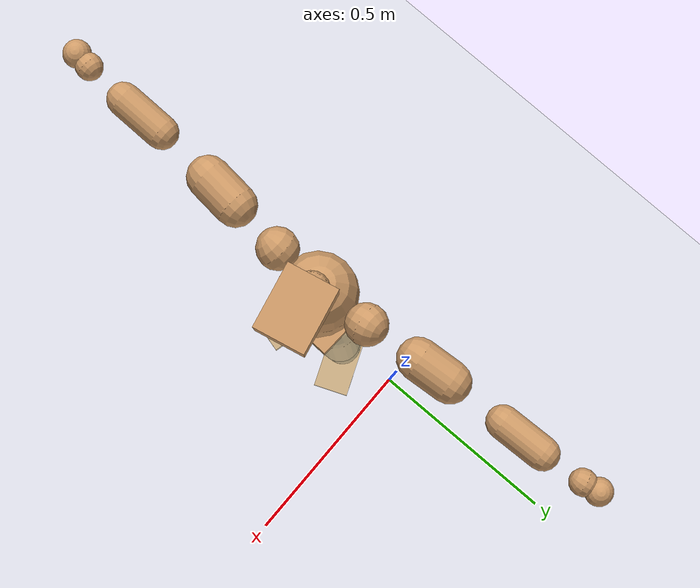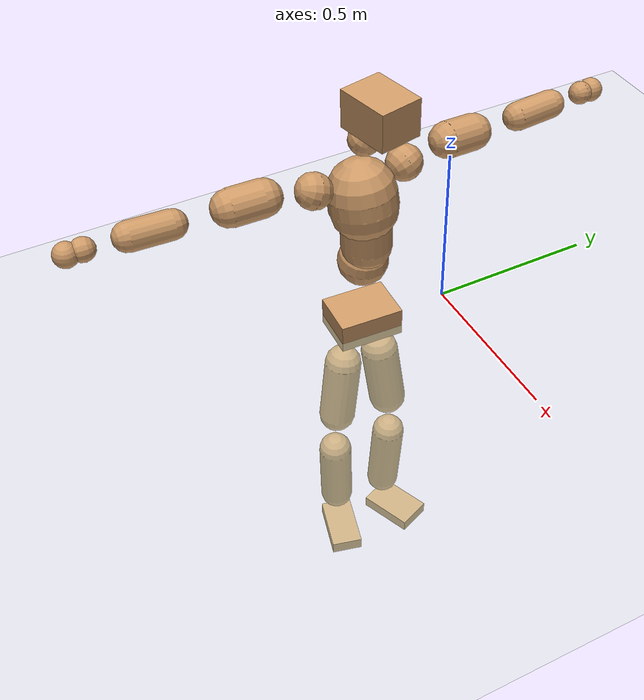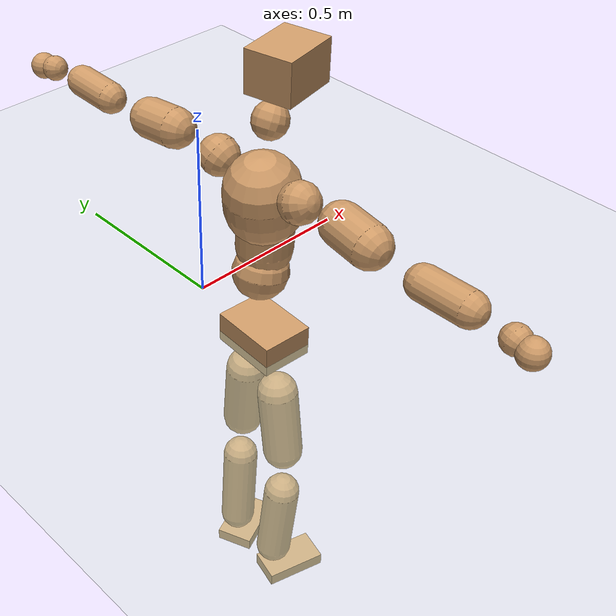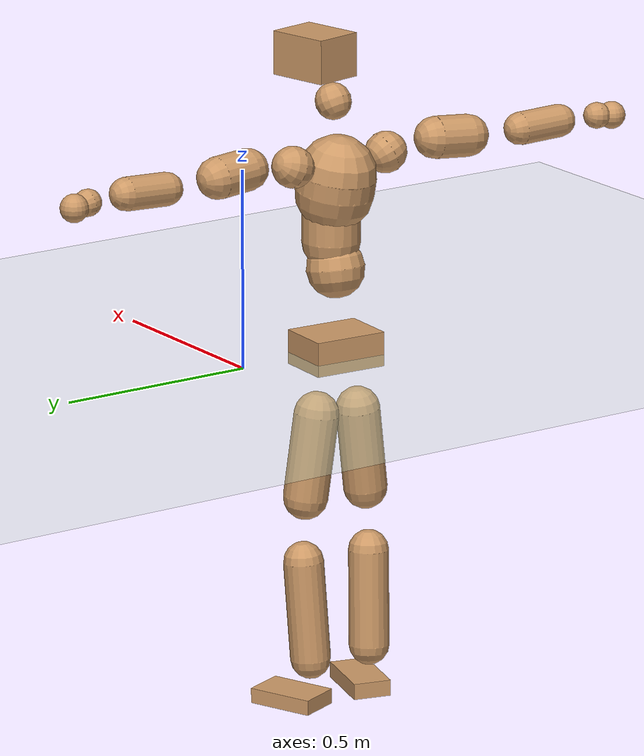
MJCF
<mujoco model="humanoid">
  <compiler coordinate="local" angle="radian"/>
  <default>
    <joint damping="0.0" armature="0.01" stiffness="0.0" limited="true"/>
    <geom conaffinity="1" condim="3" contype="7" margin="0.001" rgba="0.8 0.6 .4 1"/>
  </default>
  <asset>
    <texture type="skybox" builtin="gradient" rgb1=".4 .5 .6" rgb2="0 0 0" width="100" height="100"/>
    <texture builtin="flat" height="1278" mark="cross" markrgb="1 1 1" name="texgeom" random="0.01" rgb1="0.8 0.6 0.4" rgb2="0.8 0.6 0.4" type="cube" width="127"/>
    <texture builtin="checker" height="100" name="texplane" rgb1="0 0 0" rgb2="0.8 0.8 0.8" type="2d" width="100"/>
    <material name="MatPlane" reflectance="0.5" shininess="1" specular="1" texrepeat="60 60" texture="texplane"/>
    <material name="geom" texture="texgeom" texuniform="true"/>
  </asset>
  <worldbody>
    <light cutoff="100" diffuse="1 1 1" dir="-0 0 -1.3" directional="true" exponent="1" pos="0 0 1.3" specular=".1 .1 .1"/>
    <geom conaffinity="1" condim="3" name="floor" pos="0 0 0" rgba="0.8 0.9 0.8 1" size="100 100 .2" type="plane" material="MatPlane"/>
    <body name="Pelvis" pos="-0.0046 -0.2644 0.0198">
      <freejoint name="Pelvis"/>
      <geom type="box" contype="1" conaffinity="1" density="5359.37475" pos="-0.0117 0.0006 -0.0079" size="0.0717 0.0953 0.0436" quat="0.9996 0.0000 0.0000 -0.0268" name="Pelvis"/>
      <body name="L_Hip" pos="-0.0193 0.0513 -0.0812">
        <joint name="L_Hip_x" type="hinge" pos="0 0 0" axis="1 0 0" stiffness="1600" damping="160" armature="0.02" range="-180.0000 180.0000"/>
        <joint name="L_Hip_y" type="hinge" pos="0 0 0" axis="0 1 0" stiffness="1600" damping="160" armature="0.02" range="-180.0000 180.0000"/>
        <joint name="L_Hip_z" type="hinge" pos="0 0 0" axis="0 0 1" stiffness="1600" damping="160" armature="0.02" range="-180.0000 180.0000"/>
        <geom type="capsule" contype="1" conaffinity="1" density="2040.816327" size="0.0563" fromto="0.0040 0.0105 -0.0856 0.0139 0.0367 -0.2995" name="L_Hip"/>
        <body name="L_Knee" pos="0.0179 0.0471 -0.3851">
          <joint name="L_Knee_x" type="hinge" pos="0 0 0" axis="1 0 0" stiffness="1600" damping="160" armature="0.02" range="-180.0000 180.0000"/>
          <joint name="L_Knee_y" type="hinge" pos="0 0 0" axis="0 1 0" stiffness="1600" damping="160" armature="0.02" range="-180.0000 180.0000"/>
          <joint name="L_Knee_z" type="hinge" pos="0 0 0" axis="0 0 1" stiffness="1600" damping="160" armature="0.02" range="-180.0000 180.0000"/>
          <geom type="capsule" contype="1" conaffinity="1" density="1234.567901" size="0.0507" fromto="-0.0063 -0.0023 -0.0804 -0.0260 -0.0096 -0.3315" name="L_Knee"/>
          <body name="L_Ankle" pos="-0.0324 -0.0119 -0.4118">
            <joint name="L_Ankle_x" type="hinge" pos="0 0 0" axis="1 0 0" stiffness="1600" damping="160" armature="0.02" range="-180.0000 180.0000"/>
            <joint name="L_Ankle_y" type="hinge" pos="0 0 0" axis="0 1 0" stiffness="1600" damping="160" armature="0.02" range="-180.0000 180.0000"/>
            <joint name="L_Ankle_z" type="hinge" pos="0 0 0" axis="0 0 1" stiffness="1600" damping="160" armature="0.02" range="-180.0000 180.0000"/>
            <geom type="box" contype="1" conaffinity="1" density="1000.000022" pos="0.0595 0.0241 -0.0303" size="0.0853 0.0542 0.0193" quat="0.9816 0.0000 0.0000 0.1911" name="L_Ankle"/>
            <body name="L_Toe" pos="0.1189 0.0481 -0.0606">
              <joint name="L_Toe_x" type="hinge" pos="0 0 0" axis="1 0 0" stiffness="1000" damping="100" armature="0.02" range="-180.0000 180.0000"/>
              <joint name="L_Toe_y" type="hinge" pos="0 0 0" axis="0 1 0" stiffness="1000" damping="100" armature="0.02" range="-180.0000 180.0000"/>
              <joint name="L_Toe_z" type="hinge" pos="0 0 0" axis="0 0 1" stiffness="1000" damping="100" armature="0.02" range="-180.0000 180.0000"/>
              <geom type="box" contype="1" conaffinity="1" density="7590394.776102" pos="0.0000 0.0000 0.0325" size="0.001 0.0026 0.0011" quat="0.9808 0.0000 0.0000 0.1952" name="L_Toe"/>
            </body>
          </body>
        </body>
      </body>
      <body name="R_Hip" pos="-0.0174 -0.0514 -0.0885">
        <joint name="R_Hip_x" type="hinge" pos="0 0 0" axis="1 0 0" stiffness="1600" damping="160" armature="0.02" range="-180.0000 180.0000"/>
        <joint name="R_Hip_y" type="hinge" pos="0 0 0" axis="0 1 0" stiffness="1600" damping="160" armature="0.02" range="-180.0000 180.0000"/>
        <joint name="R_Hip_z" type="hinge" pos="0 0 0" axis="0 0 1" stiffness="1600" damping="160" armature="0.02" range="-180.0000 180.0000"/>
        <geom type="capsule" contype="1" conaffinity="1" density="2040.816327" size="0.0555" fromto="0.0011 -0.0101 -0.0849 0.0039 -0.0351 -0.2944" name="R_Hip"/>
        <body name="R_Knee" pos="0.0051 -0.0452 -0.3793">
          <joint name="R_Knee_x" type="hinge" pos="0 0 0" axis="1 0 0" stiffness="1600" damping="160" armature="0.02" range="-180.0000 180.0000"/>
          <joint name="R_Knee_y" type="hinge" pos="0 0 0" axis="0 1 0" stiffness="1600" damping="160" armature="0.02" range="-180.0000 180.0000"/>
          <joint name="R_Knee_z" type="hinge" pos="0 0 0" axis="0 0 1" stiffness="1600" damping="160" armature="0.02" range="-180.0000 180.0000"/>
          <geom type="capsule" contype="1" conaffinity="1" density="1234.567901" size="0.0512" fromto="-0.0060 0.0035 -0.0809 -0.0239 0.0139 -0.3245" name="R_Knee"/>
          <body name="R_Ankle" pos="-0.0299 0.0174 -0.4054">
            <joint name="R_Ankle_x" type="hinge" pos="0 0 0" axis="1 0 0" stiffness="1600" damping="160" armature="0.02" range="-180.0000 180.0000"/>
            <joint name="R_Ankle_y" type="hinge" pos="0 0 0" axis="0 1 0" stiffness="1600" damping="160" armature="0.02" range="-180.0000 180.0000"/>
            <joint name="R_Ankle_z" type="hinge" pos="0 0 0" axis="0 0 1" stiffness="1600" damping="160" armature="0.02" range="-180.0000 180.0000"/>
            <geom type="box" contype="1" conaffinity="1" density="999.999945" pos="0.0637 -0.0168 -0.0310" size="0.0891 0.0485 0.0206" quat="0.9917 0.0000 0.0000 -0.1286" name="R_Ankle"/>
            <body name="R_Toe" pos="0.1275 -0.0336 -0.062">
              <joint name="R_Toe_x" type="hinge" pos="0 0 0" axis="1 0 0" stiffness="1000" damping="100" armature="0.02" range="-180.0000 180.0000"/>
              <joint name="R_Toe_y" type="hinge" pos="0 0 0" axis="0 1 0" stiffness="1000" damping="100" armature="0.02" range="-180.0000 180.0000"/>
              <joint name="R_Toe_z" type="hinge" pos="0 0 0" axis="0 0 1" stiffness="1000" damping="100" armature="0.02" range="-180.0000 180.0000"/>
              <geom type="box" contype="1" conaffinity="1" density="8469854.365472" pos="0.0000 0.0000 0.0323" size="0.001 0.0024 0.0011" quat="0.9928 0.0000 0.0000 -0.1195" name="R_Toe"/>
            </body>
          </body>
        </body>
      </body>
      <body name="Torso" pos="-0.0336 0.0039 0.122">
        <joint name="Torso_x" type="hinge" pos="0 0 0" axis="1 0 0" stiffness="2000" damping="200" armature="0.02" range="-180.0000 180.0000"/>
        <joint name="Torso_y" type="hinge" pos="0 0 0" axis="0 1 0" stiffness="2000" damping="200" armature="0.02" range="-180.0000 180.0000"/>
        <joint name="Torso_z" type="hinge" pos="0 0 0" axis="0 0 1" stiffness="2000" damping="200" armature="0.02" range="-180.0000 180.0000"/>
        <geom type="capsule" contype="1" conaffinity="1" density="2040.816327" size="0.0738" fromto="0.0145 0.0032 0.0760 0.0149 0.0032 0.0780" name="Torso"/>
        <body name="Spine" pos="0.0294 0.0064 0.154">
          <joint name="Spine_x" type="hinge" pos="0 0 0" axis="1 0 0" stiffness="2000" damping="200" armature="0.02" range="-180.0000 180.0000"/>
          <joint name="Spine_y" type="hinge" pos="0 0 0" axis="0 1 0" stiffness="2000" damping="200" armature="0.02" range="-180.0000 180.0000"/>
          <joint name="Spine_z" type="hinge" pos="0 0 0" axis="0 0 1" stiffness="2000" damping="200" armature="0.02" range="-180.0000 180.0000"/>
          <geom type="capsule" contype="1" conaffinity="1" density="2040.816327" size="0.0733" fromto="0.0001 -0.0012 0.0733 -0.0000 0.0002 -0.0106" name="Spine"/>
          <body name="Chest" pos="0.0001 -0.001 0.0627">
            <joint name="Chest_x" type="hinge" pos="0 0 0" axis="1 0 0" stiffness="2000" damping="200" armature="0.02" range="-180.0000 180.0000"/>
            <joint name="Chest_y" type="hinge" pos="0 0 0" axis="0 1 0" stiffness="2000" damping="200" armature="0.02" range="-180.0000 180.0000"/>
            <joint name="Chest_z" type="hinge" pos="0 0 0" axis="0 0 1" stiffness="2000" damping="200" armature="0.02" range="-180.0000 180.0000"/>
            <geom type="capsule" contype="1" conaffinity="1" density="2040.816327" size="0.0987" fromto="-0.0158 -0.0058 0.0973 -0.0086 -0.0031 0.0530" name="Chest"/>
            <body name="Neck" pos="-0.0267 -0.0134 0.2235">
              <joint name="Neck_x" type="hinge" pos="0 0 0" axis="1 0 0" stiffness="1000" damping="100" armature="0.02" range="-180.0000 180.0000"/>
              <joint name="Neck_y" type="hinge" pos="0 0 0" axis="0 1 0" stiffness="1000" damping="100" armature="0.02" range="-180.0000 180.0000"/>
              <joint name="Neck_z" type="hinge" pos="0 0 0" axis="0 0 1" stiffness="1000" damping="100" armature="0.02" range="-180.0000 180.0000"/>
              <geom type="capsule" contype="1" conaffinity="1" density="1000" size="0.0452" fromto="0.0293 0.0054 0.0530 0.0303 0.0056 0.0548" name="Neck"/>
              <body name="Head" pos="0.0597 0.0111 0.1078">
                <joint name="Head_x" type="hinge" pos="0 0 0" axis="1 0 0" stiffness="1000" damping="100" armature="0.02" range="-180.0000 180.0000"/>
                <joint name="Head_y" type="hinge" pos="0 0 0" axis="0 1 0" stiffness="1000" damping="100" armature="0.02" range="-180.0000 180.0000"/>
                <joint name="Head_z" type="hinge" pos="0 0 0" axis="0 0 1" stiffness="1000" damping="100" armature="0.02" range="-180.0000 180.0000"/>
                <geom type="box" contype="1" conaffinity="1" density="2249.999987" pos="0.0308 0.0065 0.0549" size="0.08 0.0629 0.0547" quat="0.9946 0.0000 0.0000 0.1042" name="Head"/>
              </body>
            </body>
            <body name="L_Thorax" pos="-0.0203 0.0713 0.1149">
              <joint name="L_Thorax_x" type="hinge" pos="0 0 0" axis="1 0 0" stiffness="1000" damping="100" armature="0.02" range="-180.0000 180.0000"/>
              <joint name="L_Thorax_y" type="hinge" pos="0 0 0" axis="0 1 0" stiffness="1000" damping="100" armature="0.02" range="-180.0000 180.0000"/>
              <joint name="L_Thorax_z" type="hinge" pos="0 0 0" axis="0 0 1" stiffness="1000" damping="100" armature="0.02" range="-180.0000 180.0000"/>
              <geom type="capsule" contype="1" conaffinity="1" density="1000" size="0.052" fromto="-0.0084 0.0602 0.0237 -0.0086 0.0621 0.0244" name="L_Thorax"/>
              <body name="L_Shoulder" pos="-0.017 0.1223 0.0482">
                <joint name="L_Shoulder_x" type="hinge" pos="0 0 0" axis="1 0 0" stiffness="1000" damping="100" armature="0.02" range="-720.0000 720.0000"/>
                <joint name="L_Shoulder_y" type="hinge" pos="0 0 0" axis="0 1 0" stiffness="1000" damping="100" armature="0.02" range="-720.0000 720.0000"/>
                <joint name="L_Shoulder_z" type="hinge" pos="0 0 0" axis="0 0 1" stiffness="1000" damping="100" armature="0.02" range="-720.0000 720.0000"/>
                <geom type="capsule" contype="1" conaffinity="1" density="1000" size="0.0524" fromto="-0.0065 0.0820 -0.0054 -0.0136 0.1713 -0.0112" name="L_Shoulder"/>
                <body name="L_Elbow" pos="-0.0202 0.2532 -0.0166">
                  <joint name="L_Elbow_x" type="hinge" pos="0 0 0" axis="1 0 0" stiffness="1000" damping="100" armature="0.02" range="-720.0000 720.0000"/>
                  <joint name="L_Elbow_y" type="hinge" pos="0 0 0" axis="0 1 0" stiffness="1000" damping="100" armature="0.02" range="-720.0000 720.0000"/>
                  <joint name="L_Elbow_z" type="hinge" pos="0 0 0" axis="0 0 1" stiffness="1000" damping="100" armature="0.02" range="-720.0000 720.0000"/>
                  <geom type="capsule" contype="1" conaffinity="1" density="1000" size="0.0411" fromto="-0.0021 0.0710 0.0035 -0.0055 0.1865 0.0093" name="L_Elbow"/>
                  <body name="L_Wrist" pos="-0.0076 0.2575 0.0128">
                    <joint name="L_Wrist_x" type="hinge" pos="0 0 0" axis="1 0 0" stiffness="600" damping="60" armature="0.02" range="-180.0000 180.0000"/>
                    <joint name="L_Wrist_y" type="hinge" pos="0 0 0" axis="0 1 0" stiffness="600" damping="60" armature="0.02" range="-180.0000 180.0000"/>
                    <joint name="L_Wrist_z" type="hinge" pos="0 0 0" axis="0 0 1" stiffness="600" damping="60" armature="0.02" range="-180.0000 180.0000"/>
                    <geom type="capsule" contype="1" conaffinity="1" density="1000" size="0.0333" fromto="-0.0073 0.0411 -0.0051 -0.0076 0.0431 -0.0054" name="L_Wrist"/>
                    <body name="L_Hand" pos="-0.0149 0.0842 -0.0105">
                      <joint name="L_Hand_x" type="hinge" pos="0 0 0" axis="1 0 0" stiffness="600" damping="60" armature="0.02" range="-180.0000 180.0000"/>
                      <joint name="L_Hand_y" type="hinge" pos="0 0 0" axis="0 1 0" stiffness="600" damping="60" armature="0.02" range="-180.0000 180.0000"/>
                      <joint name="L_Hand_z" type="hinge" pos="0 0 0" axis="0 0 1" stiffness="600" damping="60" armature="0.02" range="-180.0000 180.0000"/>
                      <geom type="sphere" contype="1" conaffinity="1" density="1000" size="0.0347" pos="0.0000 0.0000 0.0000" name="L_Hand"/>
                    </body>
                  </body>
                </body>
              </body>
            </body>
            <body name="R_Thorax" pos="-0.0262 -0.0846 0.1124">
              <joint name="R_Thorax_x" type="hinge" pos="0 0 0" axis="1 0 0" stiffness="1000" damping="100" armature="0.02" range="-180.0000 180.0000"/>
              <joint name="R_Thorax_y" type="hinge" pos="0 0 0" axis="0 1 0" stiffness="1000" damping="100" armature="0.02" range="-180.0000 180.0000"/>
              <joint name="R_Thorax_z" type="hinge" pos="0 0 0" axis="0 0 1" stiffness="1000" damping="100" armature="0.02" range="-180.0000 180.0000"/>
              <geom type="capsule" contype="1" conaffinity="1" density="1000" size="0.0521" fromto="-0.0037 -0.0558 0.0239 -0.0038 -0.0576 0.0247" name="R_Thorax"/>
              <body name="R_Shoulder" pos="-0.0075 -0.1134 0.0485">
                <joint name="R_Shoulder_x" type="hinge" pos="0 0 0" axis="1 0 0" stiffness="1000" damping="100" armature="0.02" range="-720.0000 720.0000"/>
                <joint name="R_Shoulder_y" type="hinge" pos="0 0 0" axis="0 1 0" stiffness="1000" damping="100" armature="0.02" range="-720.0000 720.0000"/>
                <joint name="R_Shoulder_z" type="hinge" pos="0 0 0" axis="0 0 1" stiffness="1000" damping="100" armature="0.02" range="-720.0000 720.0000"/>
                <geom type="capsule" contype="1" conaffinity="1" density="1000" size="0.0531" fromto="-0.0086 -0.0825 -0.0053 -0.0181 -0.1737 -0.0112" name="R_Shoulder"/>
                <body name="R_Elbow" pos="-0.0266 -0.2562 -0.0165">
                  <joint name="R_Elbow_x" type="hinge" pos="0 0 0" axis="1 0 0" stiffness="1000" damping="100" armature="0.02" range="-720.0000 720.0000"/>
                  <joint name="R_Elbow_y" type="hinge" pos="0 0 0" axis="0 1 0" stiffness="1000" damping="100" armature="0.02" range="-720.0000 720.0000"/>
                  <joint name="R_Elbow_z" type="hinge" pos="0 0 0" axis="0 0 1" stiffness="1000" damping="100" armature="0.02" range="-720.0000 720.0000"/>
                  <geom type="capsule" contype="1" conaffinity="1" density="1000" size="0.0413" fromto="-0.0011 -0.0712 0.0021 -0.0029 -0.1900 0.0057" name="R_Elbow"/>
                  <body name="R_Wrist" pos="-0.004 -0.2612 0.0078">
                    <joint name="R_Wrist_x" type="hinge" pos="0 0 0" axis="1 0 0" stiffness="600" damping="60" armature="0.02" range="-180.0000 180.0000"/>
                    <joint name="R_Wrist_y" type="hinge" pos="0 0 0" axis="0 1 0" stiffness="600" damping="60" armature="0.02" range="-180.0000 180.0000"/>
                    <joint name="R_Wrist_z" type="hinge" pos="0 0 0" axis="0 0 1" stiffness="600" damping="60" armature="0.02" range="-180.0000 180.0000"/>
                    <geom type="capsule" contype="1" conaffinity="1" density="1000" size="0.0333" fromto="-0.0048 -0.0417 -0.0040 -0.0051 -0.0437 -0.0042" name="R_Wrist"/>
                    <body name="R_Hand" pos="-0.0099 -0.0854 -0.0082">
                      <joint name="R_Hand_x" type="hinge" pos="0 0 0" axis="1 0 0" stiffness="600" damping="60" armature="0.02" range="-180.0000 180.0000"/>
                      <joint name="R_Hand_y" type="hinge" pos="0 0 0" axis="0 1 0" stiffness="600" damping="60" armature="0.02" range="-180.0000 180.0000"/>
                      <joint name="R_Hand_z" type="hinge" pos="0 0 0" axis="0 0 1" stiffness="600" damping="60" armature="0.02" range="-180.0000 180.0000"/>
                      <geom type="sphere" contype="1" conaffinity="1" density="1000" size="0.0347" pos="0.0000 0.0000 0.0000" name="R_Hand"/>
                    </body>
                  </body>
                </body>
              </body>
            </body>
          </body>
        </body>
      </body>
    </body>
  </worldbody>
  <actuator>
    <motor name="L_Hip_x" joint="L_Hip_x" gear="500"/>
    <motor name="L_Hip_y" joint="L_Hip_y" gear="500"/>
    <motor name="L_Hip_z" joint="L_Hip_z" gear="500"/>
    <motor name="L_Knee_x" joint="L_Knee_x" gear="500"/>
    <motor name="L_Knee_y" joint="L_Knee_y" gear="500"/>
    <motor name="L_Knee_z" joint="L_Knee_z" gear="500"/>
    <motor name="L_Ankle_x" joint="L_Ankle_x" gear="500"/>
    <motor name="L_Ankle_y" joint="L_Ankle_y" gear="500"/>
    <motor name="L_Ankle_z" joint="L_Ankle_z" gear="500"/>
    <motor name="L_Toe_x" joint="L_Toe_x" gear="500"/>
    <motor name="L_Toe_y" joint="L_Toe_y" gear="500"/>
    <motor name="L_Toe_z" joint="L_Toe_z" gear="500"/>
    <motor name="R_Hip_x" joint="R_Hip_x" gear="500"/>
    <motor name="R_Hip_y" joint="R_Hip_y" gear="500"/>
    <motor name="R_Hip_z" joint="R_Hip_z" gear="500"/>
    <motor name="R_Knee_x" joint="R_Knee_x" gear="500"/>
    <motor name="R_Knee_y" joint="R_Knee_y" gear="500"/>
    <motor name="R_Knee_z" joint="R_Knee_z" gear="500"/>
    <motor name="R_Ankle_x" joint="R_Ankle_x" gear="500"/>
    <motor name="R_Ankle_y" joint="R_Ankle_y" gear="500"/>
    <motor name="R_Ankle_z" joint="R_Ankle_z" gear="500"/>
    <motor name="R_Toe_x" joint="R_Toe_x" gear="500"/>
    <motor name="R_Toe_y" joint="R_Toe_y" gear="500"/>
    <motor name="R_Toe_z" joint="R_Toe_z" gear="500"/>
    <motor name="Torso_x" joint="Torso_x" gear="500"/>
    <motor name="Torso_y" joint="Torso_y" gear="500"/>
    <motor name="Torso_z" joint="Torso_z" gear="500"/>
    <motor name="Spine_x" joint="Spine_x" gear="500"/>
    <motor name="Spine_y" joint="Spine_y" gear="500"/>
    <motor name="Spine_z" joint="Spine_z" gear="500"/>
    <motor name="Chest_x" joint="Chest_x" gear="500"/>
    <motor name="Chest_y" joint="Chest_y" gear="500"/>
    <motor name="Chest_z" joint="Chest_z" gear="500"/>
    <motor name="Neck_x" joint="Neck_x" gear="500"/>
    <motor name="Neck_y" joint="Neck_y" gear="500"/>
    <motor name="Neck_z" joint="Neck_z" gear="500"/>
    <motor name="Head_x" joint="Head_x" gear="500"/>
    <motor name="Head_y" joint="Head_y" gear="500"/>
    <motor name="Head_z" joint="Head_z" gear="500"/>
    <motor name="L_Thorax_x" joint="L_Thorax_x" gear="500"/>
    <motor name="L_Thorax_y" joint="L_Thorax_y" gear="500"/>
    <motor name="L_Thorax_z" joint="L_Thorax_z" gear="500"/>
    <motor name="L_Shoulder_x" joint="L_Shoulder_x" gear="500"/>
    <motor name="L_Shoulder_y" joint="L_Shoulder_y" gear="500"/>
    <motor name="L_Shoulder_z" joint="L_Shoulder_z" gear="500"/>
    <motor name="L_Elbow_x" joint="L_Elbow_x" gear="500"/>
    <motor name="L_Elbow_y" joint="L_Elbow_y" gear="500"/>
    <motor name="L_Elbow_z" joint="L_Elbow_z" gear="500"/>
    <motor name="L_Wrist_x" joint="L_Wrist_x" gear="500"/>
    <motor name="L_Wrist_y" joint="L_Wrist_y" gear="500"/>
    <motor name="L_Wrist_z" joint="L_Wrist_z" gear="500"/>
    <motor name="L_Hand_x" joint="L_Hand_x" gear="500"/>
    <motor name="L_Hand_y" joint="L_Hand_y" gear="500"/>
    <motor name="L_Hand_z" joint="L_Hand_z" gear="500"/>
    <motor name="R_Thorax_x" joint="R_Thorax_x" gear="500"/>
    <motor name="R_Thorax_y" joint="R_Thorax_y" gear="500"/>
    <motor name="R_Thorax_z" joint="R_Thorax_z" gear="500"/>
    <motor name="R_Shoulder_x" joint="R_Shoulder_x" gear="500"/>
    <motor name="R_Shoulder_y" joint="R_Shoulder_y" gear="500"/>
    <motor name="R_Shoulder_z" joint="R_Shoulder_z" gear="500"/>
    <motor name="R_Elbow_x" joint="R_Elbow_x" gear="500"/>
    <motor name="R_Elbow_y" joint="R_Elbow_y" gear="500"/>
    <motor name="R_Elbow_z" joint="R_Elbow_z" gear="500"/>
    <motor name="R_Wrist_x" joint="R_Wrist_x" gear="500"/>
    <motor name="R_Wrist_y" joint="R_Wrist_y" gear="500"/>
    <motor name="R_Wrist_z" joint="R_Wrist_z" gear="500"/>
    <motor name="R_Hand_x" joint="R_Hand_x" gear="500"/>
    <motor name="R_Hand_y" joint="R_Hand_y" gear="500"/>
    <motor name="R_Hand_z" joint="R_Hand_z" gear="500"/>
  </actuator>
  <contact>
    <exclude body1="Torso" body2="Chest"/>
    <exclude body1="Head" body2="Chest"/>
    <exclude body1="R_Knee" body2="R_Toe"/>
    <exclude body1="R_Knee" body2="L_Ankle"/>
    <exclude body1="R_Knee" body2="L_Toe"/>
    <exclude body1="L_Knee" body2="L_Toe"/>
    <exclude body1="L_Knee" body2="R_Ankle"/>
    <exclude body1="L_Knee" body2="R_Toe"/>
    <exclude body1="L_Shoulder" body2="Chest"/>
    <exclude body1="R_Shoulder" body2="Chest"/>
  </contact>
  <sensor/>
  <size njmax="700" nconmax="700"/>
</mujoco>
